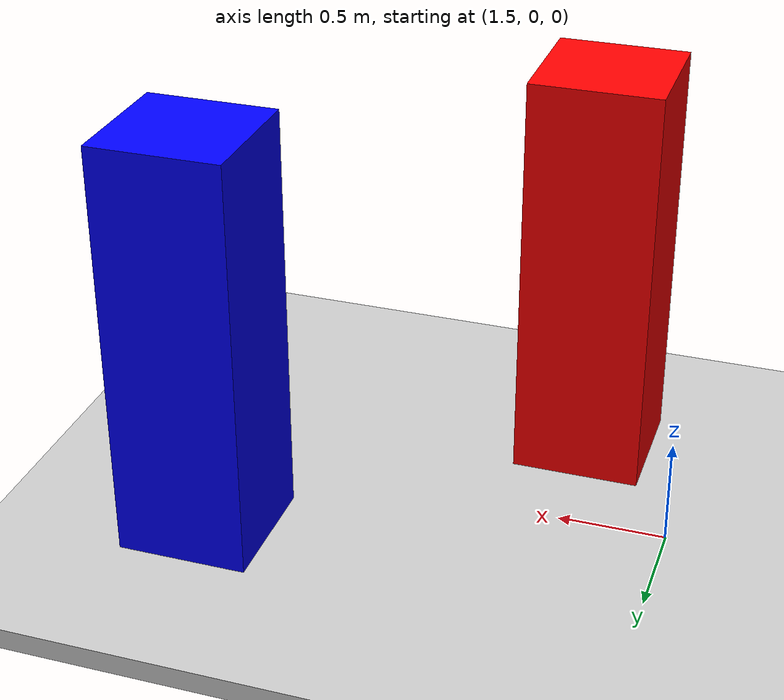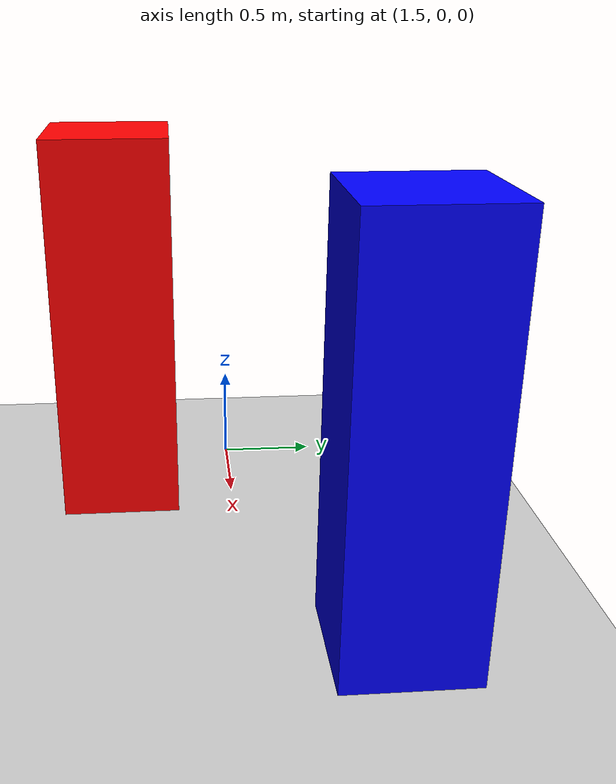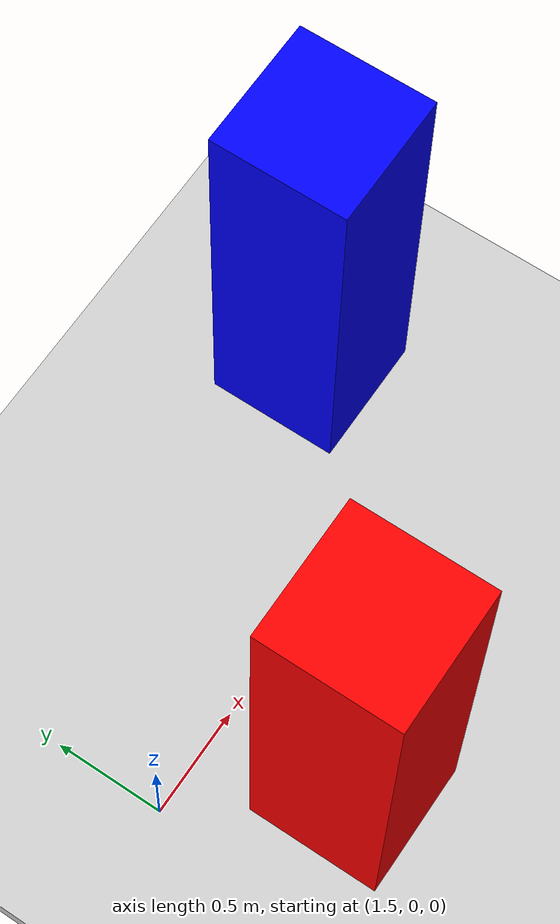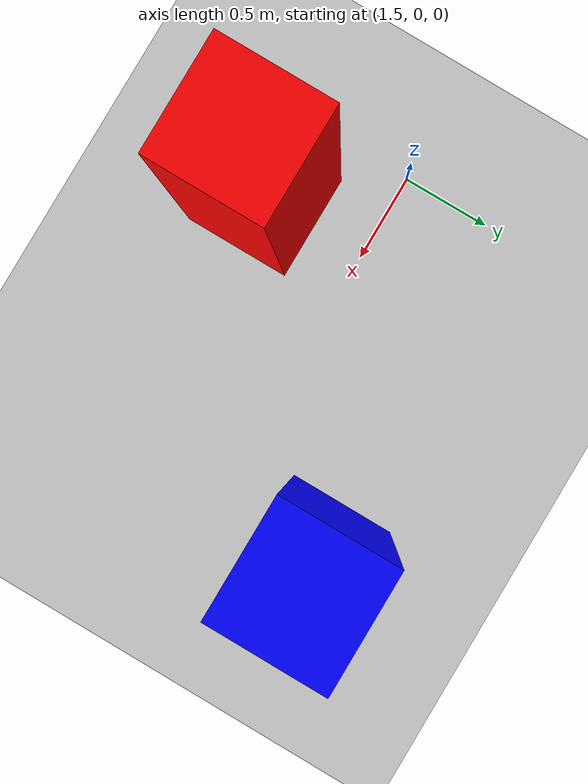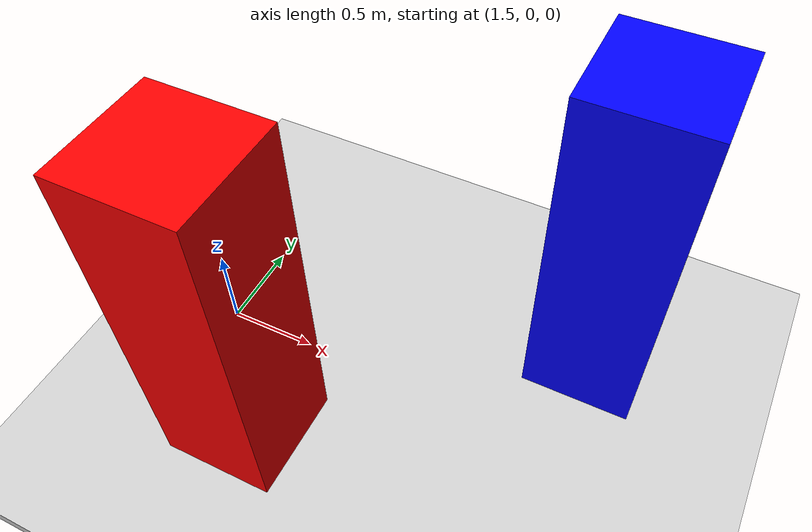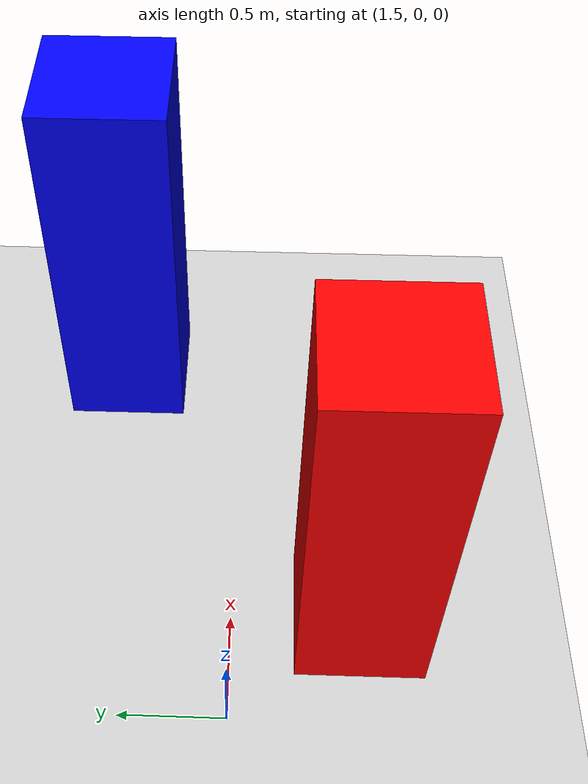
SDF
<?xml version="1.0"?>
<sdf version="1.7">
  <world name="w">

    <!-- Core systems -->
    <plugin filename="ignition-gazebo-sensors-system"
            name="ignition::gazebo::systems::Sensors">
      <render_engine>ogre2</render_engine>
    </plugin>
    <plugin filename="ignition-gazebo-scene-broadcaster-system"
            name="ignition::gazebo::systems::SceneBroadcaster"/>
    <plugin filename="ignition-gazebo-user-commands-system"
            name="ignition::gazebo::systems::UserCommands"/>

    <!-- Light + atmosphere -->
    <light name="sun" type="directional">
      <direction>-0.5 0.1 -0.9</direction>
    </light>
    <atmosphere type="adiabatic">
      <temperature>300</temperature>
      <temperature_gradient>0.0</temperature_gradient>
    </atmosphere>

    <!-- Ground plane with neutral thermal -->
    <model name="ground_plane">
      <static>true</static>
      <link name="link">
        <collision name="c">
          <geometry><box><size>20 20 0.1</size></box></geometry>
        </collision>
        <visual name="v">
          <geometry><box><size>20 20 0.1</size></box></geometry>
          <material>
            <ambient>0.8 0.8 0.8 1</ambient>
            <diffuse>0.8 0.8 0.8 1</diffuse>
          </material>
          <!-- Thermal plugin for neutral surface -->
          <plugin filename="ignition-gazebo-thermal-system"
                  name="ignition::gazebo::systems::Thermal">
            <temperature>300</temperature>
          </plugin>
        </visual>
      </link>
    </model>

    <!-- Warm box -->
    <model name="warm_box">
      <pose>2.0 -0.6 1 0 0 0</pose>
      <static>false</static>
      <link name="link">
        <gravity>false</gravity>
        <kinematic>true</kinematic>
        <collision name="c"><geometry><box><size>0.6 0.6 2</size></box></geometry></collision>
        <visual name="v">
          <geometry><box><size>0.6 0.6 2</size></box></geometry>
          <material><ambient>1 0 0 1</ambient><diffuse>1 0 0 1</diffuse></material>
          <plugin filename="ignition-gazebo-thermal-system"
                  name="ignition::gazebo::systems::Thermal">
            <temperature>330</temperature>
          </plugin>
        </visual>
      </link>
    </model>

    <!-- Cold box -->
    <model name="cold_box">
      <pose>3.5 0.6 1 0 0 0</pose>
      <static>false</static>
      <link name="link">
        <gravity>false</gravity>
        <kinematic>true</kinematic>
        <collision name="c"><geometry><box><size>0.6 0.6 2</size></box></geometry></collision>
        <visual name="v">
          <geometry><box><size>0.6 0.6 2</size></box></geometry>
          <material><ambient>0 0 1 1</ambient><diffuse>0 0 1 1</diffuse></material>
          <plugin filename="ignition-gazebo-thermal-system"
                  name="ignition::gazebo::systems::Thermal">
            <temperature>280</temperature>
          </plugin>
        </visual>
      </link>
    </model>

    <!-- Thermal overhead camera -->
    <model name="thermal_cam">
      <pose>0 0 10 -1.57 0 0</pose>
      <static>true</static>
      <link name="link">
        <!-- 16-bit RAW -->
        <sensor name="thermal_raw" type="thermal">
          <always_on>1</always_on>
          <update_rate>15</update_rate>
          <visualize>true</visualize>
          <topic>thermal_camera</topic>
          <camera>
            <horizontal_fov>1.2</horizontal_fov>
            <image><width>320</width><height>240</height><format>L16</format></image>
            <clip><near>0.5</near><far>100</far></clip>
          </camera>
        </sensor>

        <!-- 8-bit displayable -->
        <sensor name="thermal_8bit" type="thermal">
          <always_on>1</always_on>
          <update_rate>15</update_rate>
          <visualize>true</visualize>
          <topic>thermal_camera_8bit/image</topic>
          <camera>
            <horizontal_fov>1.2</horizontal_fov>
            <image><width>320</width><height>240</height><format>L8</format></image>
            <clip><near>0.5</near><far>100</far></clip>
          </camera>
          <plugin filename="ignition-gazebo-thermal-sensor-system"
                  name="ignition::gazebo::systems::ThermalSensor">
            <min_temp>253.15</min_temp>
            <max_temp>673.15</max_temp>
            <resolution>3.0</resolution>
            <ambient_temperature>300</ambient_temperature>
          </plugin>
        </sensor>
      </link>
    </model>
  </world>
</sdf>
